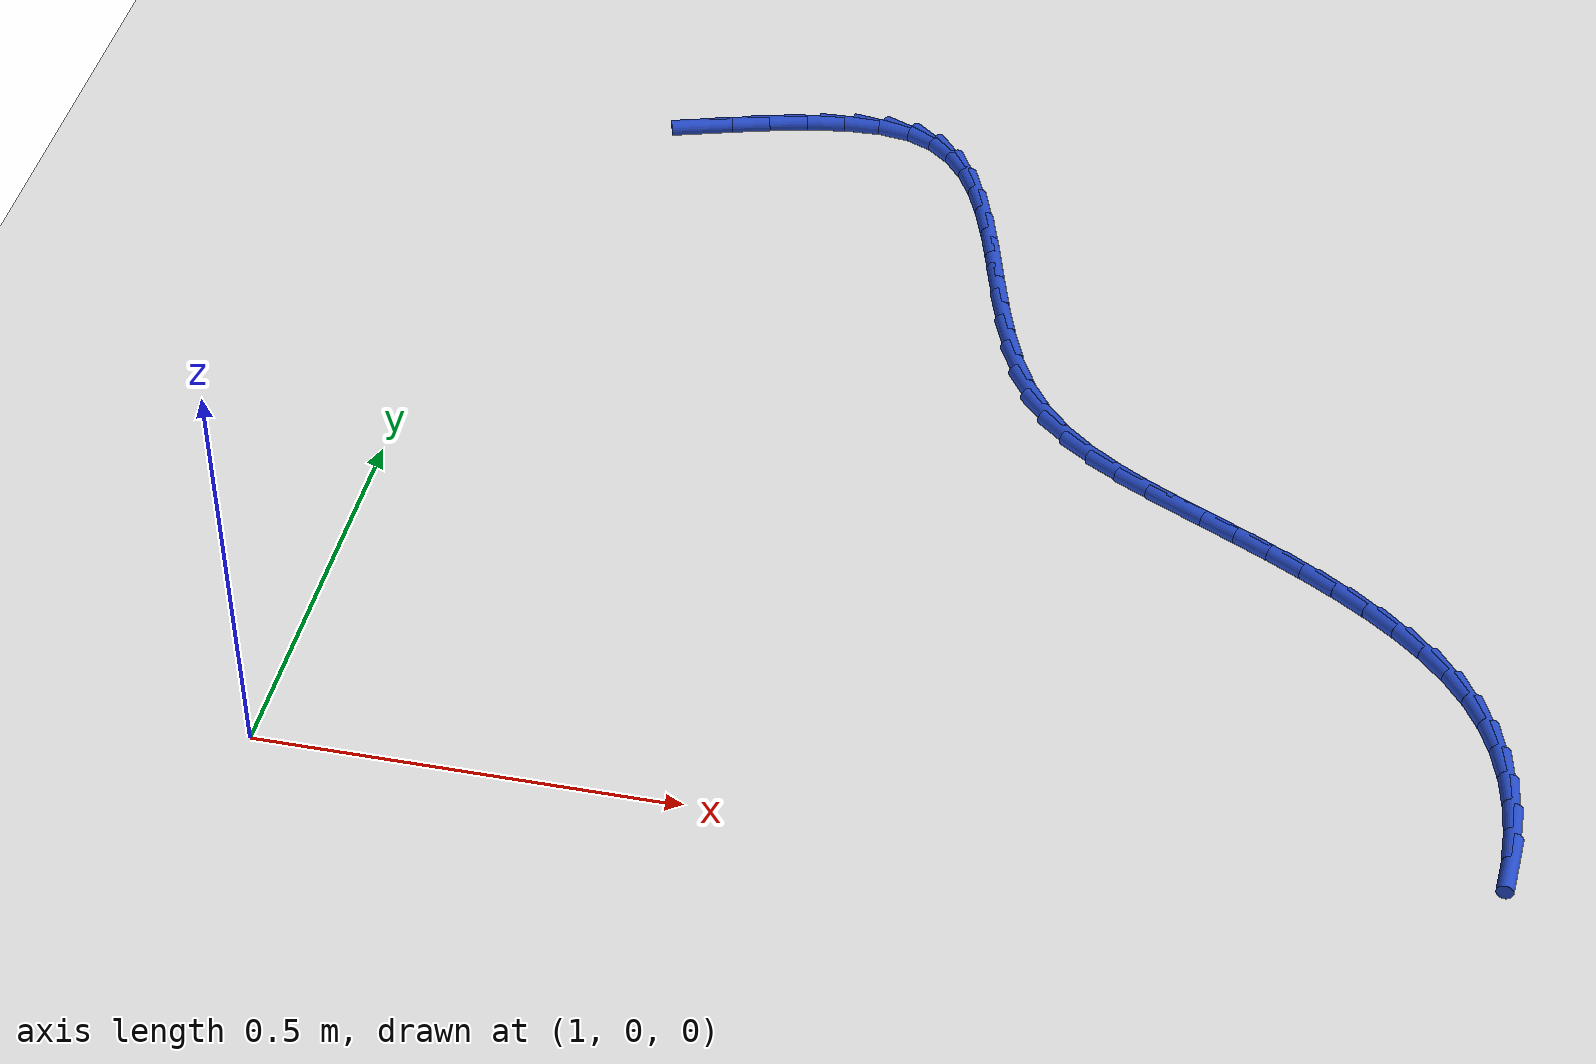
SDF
<sdf version="1.6">
 <world name="default">
  <model name="ground_plane">
   <static>1</static>
   <link name="link">
    <collision name="collision">
     <geometry><plane><normal>0 0 1</normal><size>100 100</size></plane></geometry>
     <surface><friction><ode><mu>100</mu><mu2>50</mu2></ode></friction></surface>
    </collision>
    <visual name="visual">
     <cast_shadows>0</cast_shadows>
     <geometry><plane><normal>0 0 1</normal><size>100 100</size></plane></geometry>
     <material>
      <script><uri>file://media/materials/scripts/gazebo.material</uri><name>Gazebo/WhiteGlow</name></script>
     </material>
    </visual>
   </link>
  </model>
  <model name="line">
   <link name="link_40">
    <pose>1.2249648379609612 1.1995914417889133 0.01 0 1.57 0.290543775917738</pose>
    <collision name="collision">
     <geometry><cylinder><radius>0.01</radius><length>0.08</length></cylinder></geometry>
    </collision>
    <visual name="visual">
     <material>
      <script><name>Gazebo/Blue</name><uri>file://media/materials/scripts/gazebo.material</uri></script>
     </material>
     <geometry><cylinder><radius>0.01</radius><length>0.08</length></cylinder></geometry>
    </visual>
   </link>
   <link name="link_41">
    <pose>1.2723204834304094 1.2137510204459803 0.01 0 1.57 0.2707269464709753</pose>
    <collision name="collision">
     <geometry><cylinder><radius>0.01</radius><length>0.08</length></cylinder></geometry>
    </collision>
    <visual name="visual">
     <material>
      <script><name>Gazebo/Blue</name><uri>file://media/materials/scripts/gazebo.material</uri></script>
     </material>
     <geometry><cylinder><radius>0.01</radius><length>0.08</length></cylinder></geometry>
    </visual>
   </link>
   <link name="link_42">
    <pose>1.3207206325180272 1.2271840423753106 0.01 0 1.57 0.22664085976437714</pose>
    <collision name="collision">
     <geometry><cylinder><radius>0.01</radius><length>0.08</length></cylinder></geometry>
    </collision>
    <visual name="visual">
     <material>
      <script><name>Gazebo/Blue</name><uri>file://media/materials/scripts/gazebo.material</uri></script>
     </material>
     <geometry><cylinder><radius>0.01</radius><length>0.08</length></cylinder></geometry>
    </visual>
   </link>
   <link name="link_43">
    <pose>1.3689062204849374 1.2382957755650505 0.01 0 1.57 0.1506635015036484</pose>
    <collision name="collision">
     <geometry><cylinder><radius>0.01</radius><length>0.08</length></cylinder></geometry>
    </collision>
    <visual name="visual">
     <material>
      <script><name>Gazebo/Blue</name><uri>file://media/materials/scripts/gazebo.material</uri></script>
     </material>
     <geometry><cylinder><radius>0.01</radius><length>0.08</length></cylinder></geometry>
    </visual>
   </link>
   <link name="link_44">
    <pose>1.4155299408277586 1.2453739064028986 0.01 0 1.57 0.03046589268835789</pose>
    <collision name="collision">
     <geometry><cylinder><radius>0.01</radius><length>0.08</length></cylinder></geometry>
    </collision>
    <visual name="visual">
     <material>
      <script><name>Gazebo/Blue</name><uri>file://media/materials/scripts/gazebo.material</uri></script>
     </material>
     <geometry><cylinder><radius>0.01</radius><length>0.08</length></cylinder></geometry>
    </visual>
   </link>
   <link name="link_45">
    <pose>1.4592444870431112 1.2467061212765564 0.01 0 1.57 -0.15402413808957333</pose>
    <collision name="collision">
     <geometry><cylinder><radius>0.01</radius><length>0.08</length></cylinder></geometry>
    </collision>
    <visual name="visual">
     <material>
      <script><name>Gazebo/Blue</name><uri>file://media/materials/scripts/gazebo.material</uri></script>
     </material>
     <geometry><cylinder><radius>0.01</radius><length>0.08</length></cylinder></geometry>
    </visual>
   </link>
   <link name="link_46">
    <pose>1.4987025526276134 1.2405801065737239 0.01 0 1.57 -0.41623954469186025</pose>
    <collision name="collision">
     <geometry><cylinder><radius>0.01</radius><length>0.08</length></cylinder></geometry>
    </collision>
    <visual name="visual">
     <material>
      <script><name>Gazebo/Blue</name><uri>file://media/materials/scripts/gazebo.material</uri></script>
     </material>
     <geometry><cylinder><radius>0.01</radius><length>0.08</length></cylinder></geometry>
    </visual>
   </link>
   <link name="link_47">
    <pose>1.5327425325763862 1.225532063020155 0.01 0 1.57 -0.6857853250750617</pose>
    <collision name="collision">
     <geometry><cylinder><radius>0.01</radius><length>0.08</length></cylinder></geometry>
    </collision>
    <visual name="visual">
     <material>
      <script><name>Gazebo/Blue</name><uri>file://media/materials/scripts/gazebo.material</uri></script>
     </material>
     <geometry><cylinder><radius>0.01</radius><length>0.08</length></cylinder></geometry>
    </visual>
   </link>
   <link name="link_48">
    <pose>1.561577166524245 1.2019374029319543 0.01 0 1.57 -0.9018696962709747</pose>
    <collision name="collision">
     <geometry><cylinder><radius>0.01</radius><length>0.08</length></cylinder></geometry>
    </collision>
    <visual name="visual">
     <material>
      <script><name>Gazebo/Blue</name><uri>file://media/materials/scripts/gazebo.material</uri></script>
     </material>
     <geometry><cylinder><radius>0.01</radius><length>0.08</length></cylinder></geometry>
    </visual>
   </link>
   <link name="link_49">
    <pose>1.5860359215479582 1.1709968718251904 0.01 0 1.57 -1.0572442836678682</pose>
    <collision name="collision">
     <geometry><cylinder><radius>0.01</radius><length>0.08</length></cylinder></geometry>
    </collision>
    <visual name="visual">
     <material>
      <script><name>Gazebo/Blue</name><uri>file://media/materials/scripts/gazebo.material</uri></script>
     </material>
     <geometry><cylinder><radius>0.01</radius><length>0.08</length></cylinder></geometry>
    </visual>
   </link>
   <link name="link_50">
    <pose>1.60695118975501 1.1339151296273804 0.01 0 1.57 -1.1619637105951606</pose>
    <collision name="collision">
     <geometry><cylinder><radius>0.01</radius><length>0.08</length></cylinder></geometry>
    </collision>
    <visual name="visual">
     <material>
      <script><name>Gazebo/Blue</name><uri>file://media/materials/scripts/gazebo.material</uri></script>
     </material>
     <geometry><cylinder><radius>0.01</radius><length>0.08</length></cylinder></geometry>
    </visual>
   </link>
   <link name="link_51">
    <pose>1.6251553632528846 1.0918968362660415 0.01 0 1.57 -1.2280414936706172</pose>
    <collision name="collision">
     <geometry><cylinder><radius>0.01</radius><length>0.08</length></cylinder></geometry>
    </collision>
    <visual name="visual">
     <material>
      <script><name>Gazebo/Blue</name><uri>file://media/materials/scripts/gazebo.material</uri></script>
     </material>
     <geometry><cylinder><radius>0.01</radius><length>0.08</length></cylinder></geometry>
    </visual>
   </link>
   <link name="link_52">
    <pose>1.6414808341490663 1.0461466516686926 0.01 0 1.57 -1.2642835738913443</pose>
    <collision name="collision">
     <geometry><cylinder><radius>0.01</radius><length>0.08</length></cylinder></geometry>
    </collision>
    <visual name="visual">
     <material>
      <script><name>Gazebo/Blue</name><uri>file://media/materials/scripts/gazebo.material</uri></script>
     </material>
     <geometry><cylinder><radius>0.01</radius><length>0.08</length></cylinder></geometry>
    </visual>
   </link>
   <link name="link_53">
    <pose>1.6567599945510394 0.99786923576285 0.01 0 1.57 -1.2759166459129523</pose>
    <collision name="collision">
     <geometry><cylinder><radius>0.01</radius><length>0.08</length></cylinder></geometry>
    </collision>
    <visual name="visual">
     <material>
      <script><name>Gazebo/Blue</name><uri>file://media/materials/scripts/gazebo.material</uri></script>
     </material>
     <geometry><cylinder><radius>0.01</radius><length>0.08</length></cylinder></geometry>
    </visual>
   </link>
   <link name="link_54">
    <pose>1.671825236566288 0.948269248476033 0.01 0 1.57 -1.2652224332716555</pose>
    <collision name="collision">
     <geometry><cylinder><radius>0.01</radius><length>0.08</length></cylinder></geometry>
    </collision>
    <visual name="visual">
     <material>
      <script><name>Gazebo/Blue</name><uri>file://media/materials/scripts/gazebo.material</uri></script>
     </material>
     <geometry><cylinder><radius>0.01</radius><length>0.08</length></cylinder></geometry>
    </visual>
   </link>
   <link name="link_55">
    <pose>1.6875089523022955 0.8985513497357576 0.01 0 1.57 -1.2320405548048965</pose>
    <collision name="collision">
     <geometry><cylinder><radius>0.01</radius><length>0.08</length></cylinder></geometry>
    </collision>
    <visual name="visual">
     <material>
      <script><name>Gazebo/Blue</name><uri>file://media/materials/scripts/gazebo.material</uri></script>
     </material>
     <geometry><cylinder><radius>0.01</radius><length>0.08</length></cylinder></geometry>
    </visual>
   </link>
   <link name="link_56">
    <pose>1.7046435338665473 0.8499201994695419 0.01 0 1.57 -1.1739913810581275</pose>
    <collision name="collision">
     <geometry><cylinder><radius>0.01</radius><length>0.08</length></cylinder></geometry>
    </collision>
    <visual name="visual">
     <material>
      <script><name>Gazebo/Blue</name><uri>file://media/materials/scripts/gazebo.material</uri></script>
     </material>
     <geometry><cylinder><radius>0.01</radius><length>0.08</length></cylinder></geometry>
    </visual>
   </link>
   <link name="link_57">
    <pose>1.7240613733665273 0.8035804576049044 0.01 0 1.57 -1.0866074532054473</pose>
    <collision name="collision">
     <geometry><cylinder><radius>0.01</radius><length>0.08</length></cylinder></geometry>
    </collision>
    <visual name="visual">
     <material>
      <script><name>Gazebo/Blue</name><uri>file://media/materials/scripts/gazebo.material</uri></script>
     </material>
     <geometry><cylinder><radius>0.01</radius><length>0.08</length></cylinder></geometry>
    </visual>
   </link>
   <link name="link_58">
    <pose>1.7465948629097192 0.7607367840693616 0.01 0 1.57 -0.9642002316851017</pose>
    <collision name="collision">
     <geometry><cylinder><radius>0.01</radius><length>0.08</length></cylinder></geometry>
    </collision>
    <visual name="visual">
     <material>
      <script><name>Gazebo/Blue</name><uri>file://media/materials/scripts/gazebo.material</uri></script>
     </material>
     <geometry><cylinder><radius>0.01</radius><length>0.08</length></cylinder></geometry>
    </visual>
   </link>
   <link name="link_59">
    <pose>1.7730686460825404 0.7225826564292347 0.01 0 1.57 -0.8220209030377961</pose>
    <collision name="collision">
     <geometry><cylinder><radius>0.01</radius><length>0.08</length></cylinder></geometry>
    </collision>
    <visual name="visual">
     <material>
      <script><name>Gazebo/Blue</name><uri>file://media/materials/scripts/gazebo.material</uri></script>
     </material>
     <geometry><cylinder><radius>0.01</radius><length>0.08</length></cylinder></geometry>
    </visual>
   </link>
   <link name="link_60">
    <pose>1.8037739502809733 0.6895417469604594 0.01 0 1.57 -0.6968834012175427</pose>
    <collision name="collision">
     <geometry><cylinder><radius>0.01</radius><length>0.08</length></cylinder></geometry>
    </collision>
    <visual name="visual">
     <material>
      <script><name>Gazebo/Blue</name><uri>file://media/materials/scripts/gazebo.material</uri></script>
     </material>
     <geometry><cylinder><radius>0.01</radius><length>0.08</length></cylinder></geometry>
    </visual>
   </link>
   <link name="link_61">
    <pose>1.8381332089725082 0.6607839186725879 0.01 0 1.57 -0.5975100795253664</pose>
    <collision name="collision">
     <geometry><cylinder><radius>0.01</radius><length>0.08</length></cylinder></geometry>
    </collision>
    <visual name="visual">
     <material>
      <script><name>Gazebo/Blue</name><uri>file://media/materials/scripts/gazebo.material</uri></script>
     </material>
     <geometry><cylinder><radius>0.01</radius><length>0.08</length></cylinder></geometry>
    </visual>
   </link>
   <link name="link_62">
    <pose>1.87548898683961 0.6353637710823283 0.01 0 1.57 -0.5256751692671261</pose>
    <collision name="collision">
     <geometry><cylinder><radius>0.01</radius><length>0.08</length></cylinder></geometry>
    </collision>
    <visual name="visual">
     <material>
      <script><name>Gazebo/Blue</name><uri>file://media/materials/scripts/gazebo.material</uri></script>
     </material>
     <geometry><cylinder><radius>0.01</radius><length>0.08</length></cylinder></geometry>
    </visual>
   </link>
   <link name="link_63">
    <pose>1.9151838485647434 0.6123359037063872 0.01 0 1.57 -0.4807589113709854</pose>
    <collision name="collision">
     <geometry><cylinder><radius>0.01</radius><length>0.08</length></cylinder></geometry>
    </collision>
    <visual name="visual">
     <material>
      <script><name>Gazebo/Blue</name><uri>file://media/materials/scripts/gazebo.material</uri></script>
     </material>
     <geometry><cylinder><radius>0.01</radius><length>0.08</length></cylinder></geometry>
    </visual>
   </link>
   <link name="link_64">
    <pose>1.9565603588303722 0.5907549160614726 0.01 0 1.57 -0.46136479738933345</pose>
    <collision name="collision">
     <geometry><cylinder><radius>0.01</radius><length>0.08</length></cylinder></geometry>
    </collision>
    <visual name="visual">
     <material>
      <script><name>Gazebo/Blue</name><uri>file://media/materials/scripts/gazebo.material</uri></script>
     </material>
     <geometry><cylinder><radius>0.01</radius><length>0.08</length></cylinder></geometry>
    </visual>
   </link>
   <link name="link_65">
    <pose>1.9989610823189607 0.569675407664291 0.01 0 1.57 -0.4640747519650512</pose>
    <collision name="collision">
     <geometry><cylinder><radius>0.01</radius><length>0.08</length></cylinder></geometry>
    </collision>
    <visual name="visual">
     <material>
      <script><name>Gazebo/Blue</name><uri>file://media/materials/scripts/gazebo.material</uri></script>
     </material>
     <geometry><cylinder><radius>0.01</radius><length>0.08</length></cylinder></geometry>
    </visual>
   </link>
   <link name="link_66">
    <pose>2.041745859973644 0.5482601699347459 0.01 0 1.57 -0.478686622693304</pose>
    <collision name="collision">
     <geometry><cylinder><radius>0.01</radius><length>0.08</length></cylinder></geometry>
    </collision>
    <visual name="visual">
     <material>
      <script><name>Gazebo/Blue</name><uri>file://media/materials/scripts/gazebo.material</uri></script>
     </material>
     <geometry><cylinder><radius>0.01</radius><length>0.08</length></cylinder></geometry>
    </visual>
   </link>
   <link name="link_67">
    <pose>2.084350952636455 0.5261505709050018 0.01 0 1.57 -0.5027474010741864</pose>
    <collision name="collision">
     <geometry><cylinder><radius>0.01</radius><length>0.08</length></cylinder></geometry>
    </collision>
    <visual name="visual">
     <material>
      <script><name>Gazebo/Blue</name><uri>file://media/materials/scripts/gazebo.material</uri></script>
     </material>
     <geometry><cylinder><radius>0.01</radius><length>0.08</length></cylinder></geometry>
    </visual>
   </link>
   <link name="link_68">
    <pose>2.126233744352673 0.503120261837042 0.01 0 1.57 -0.5369117692166184</pose>
    <collision name="collision">
     <geometry><cylinder><radius>0.01</radius><length>0.08</length></cylinder></geometry>
    </collision>
    <visual name="visual">
     <material>
      <script><name>Gazebo/Blue</name><uri>file://media/materials/scripts/gazebo.material</uri></script>
     </material>
     <geometry><cylinder><radius>0.01</radius><length>0.08</length></cylinder></geometry>
    </visual>
   </link>
   <link name="link_69">
    <pose>2.1668516198880976 0.47894289850510036 0.01 0 1.57 -0.5822222823168217</pose>
    <collision name="collision">
     <geometry><cylinder><radius>0.01</radius><length>0.08</length></cylinder></geometry>
    </collision>
    <visual name="visual">
     <material>
      <script><name>Gazebo/Blue</name><uri>file://media/materials/scripts/gazebo.material</uri></script>
     </material>
     <geometry><cylinder><radius>0.01</radius><length>0.08</length></cylinder></geometry>
    </visual>
   </link>
   <link name="link_70">
    <pose>2.2056619640085326 0.4533921366834104 0.01 0 1.57 -0.6400756904759483</pose>
    <collision name="collision">
     <geometry><cylinder><radius>0.01</radius><length>0.08</length></cylinder></geometry>
    </collision>
    <visual name="visual">
     <material>
      <script><name>Gazebo/Blue</name><uri>file://media/materials/scripts/gazebo.material</uri></script>
     </material>
     <geometry><cylinder><radius>0.01</radius><length>0.08</length></cylinder></geometry>
    </visual>
   </link>
   <link name="link_71">
    <pose>2.24212216147978 0.42624163214620503 0.01 0 1.57 -0.7121277651113456</pose>
    <collision name="collision">
     <geometry><cylinder><radius>0.01</radius><length>0.08</length></cylinder></geometry>
    </collision>
    <visual name="visual">
     <material>
      <script><name>Gazebo/Blue</name><uri>file://media/materials/scripts/gazebo.material</uri></script>
     </material>
     <geometry><cylinder><radius>0.01</radius><length>0.08</length></cylinder></geometry>
    </visual>
   </link>
   <link name="link_72">
    <pose>2.27568959706764 0.3972650406677183 0.01 0 1.57 -0.8000627157706809</pose>
    <collision name="collision">
     <geometry><cylinder><radius>0.01</radius><length>0.08</length></cylinder></geometry>
    </collision>
    <visual name="visual">
     <material>
      <script><name>Gazebo/Blue</name><uri>file://media/materials/scripts/gazebo.material</uri></script>
     </material>
     <geometry><cylinder><radius>0.01</radius><length>0.08</length></cylinder></geometry>
    </visual>
   </link>
   <link name="link_73">
    <pose>2.3058216555379154 0.36623601802218303 0.01 0 1.57 -0.9051306060898924</pose>
    <collision name="collision">
     <geometry><cylinder><radius>0.01</radius><length>0.08</length></cylinder></geometry>
    </collision>
    <visual name="visual">
     <material>
      <script><name>Gazebo/Blue</name><uri>file://media/materials/scripts/gazebo.material</uri></script>
     </material>
     <geometry><cylinder><radius>0.01</radius><length>0.08</length></cylinder></geometry>
    </visual>
   </link>
   <link name="link_74">
    <pose>2.3319757216564065 0.33292821998383343 0.01 0 1.57 -1.0241737372253812</pose>
    <collision name="collision">
     <geometry><cylinder><radius>0.01</radius><length>0.08</length></cylinder></geometry>
    </collision>
    <visual name="visual">
     <material>
      <script><name>Gazebo/Blue</name><uri>file://media/materials/scripts/gazebo.material</uri></script>
     </material>
     <geometry><cylinder><radius>0.01</radius><length>0.08</length></cylinder></geometry>
    </visual>
   </link>
   <link name="link_75">
    <pose>2.353723091190348 0.29718702118522117 0.01 0 1.57 -1.141833159732061</pose>
    <collision name="collision">
     <geometry><cylinder><radius>0.01</radius><length>0.08</length></cylinder></geometry>
    </collision>
    <visual name="visual">
     <material>
      <script><name>Gazebo/Blue</name><uri>file://media/materials/scripts/gazebo.material</uri></script>
     </material>
     <geometry><cylinder><radius>0.01</radius><length>0.08</length></cylinder></geometry>
    </visual>
   </link>
   <link name="link_76">
    <pose>2.3711153097674162 0.2591601636445422 0.01 0 1.57 -1.2523396371162494</pose>
    <collision name="collision">
     <geometry><cylinder><radius>0.01</radius><length>0.08</length></cylinder></geometry>
    </collision>
    <visual name="visual">
     <material>
      <script><name>Gazebo/Blue</name><uri>file://media/materials/scripts/gazebo.material</uri></script>
     </material>
     <geometry><cylinder><radius>0.01</radius><length>0.08</length></cylinder></geometry>
    </visual>
   </link>
   <link name="link_77">
    <pose>2.384330465536313 0.21907506109758382 0.01 0 1.57 -1.3543671681701592</pose>
    <collision name="collision">
     <geometry><cylinder><radius>0.01</radius><length>0.08</length></cylinder></geometry>
    </collision>
    <visual name="visual">
     <material>
      <script><name>Gazebo/Blue</name><uri>file://media/materials/scripts/gazebo.material</uri></script>
     </material>
     <geometry><cylinder><radius>0.01</radius><length>0.08</length></cylinder></geometry>
    </visual>
   </link>
   <link name="link_78">
    <pose>2.393546647292632 0.1771591276874206 0.01 0 1.57 -1.4474510270458563</pose>
    <collision name="collision">
     <geometry><cylinder><radius>0.01</radius><length>0.08</length></cylinder></geometry>
    </collision>
    <visual name="visual">
     <material>
      <script><name>Gazebo/Blue</name><uri>file://media/materials/scripts/gazebo.material</uri></script>
     </material>
     <geometry><cylinder><radius>0.01</radius><length>0.08</length></cylinder></geometry>
    </visual>
   </link>
   <link name="link_79">
    <pose>2.398941943831972 0.1336397775571293 0.01 0 1.57 -1.531780912013535</pose>
    <collision name="collision">
     <geometry><cylinder><radius>0.01</radius><length>0.08</length></cylinder></geometry>
    </collision>
    <visual name="visual">
     <material>
      <script><name>Gazebo/Blue</name><uri>file://media/materials/scripts/gazebo.material</uri></script>
     </material>
     <geometry><cylinder><radius>0.01</radius><length>0.08</length></cylinder></geometry>
    </visual>
   </link>
   <link name="link_80">
    <pose>2.400694443949929 0.08874442484978488 0.01 0 1.57 1.5336270730185173</pose>
    <collision name="collision">
     <geometry><cylinder><radius>0.01</radius><length>0.08</length></cylinder></geometry>
    </collision>
    <visual name="visual">
     <material>
      <script><name>Gazebo/Blue</name><uri>file://media/materials/scripts/gazebo.material</uri></script>
     </material>
     <geometry><cylinder><radius>0.01</radius><length>0.08</length></cylinder></geometry>
    </visual>
   </link>
  </model>
 </world>
</sdf>
